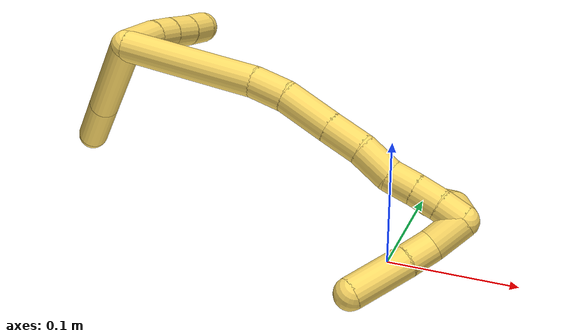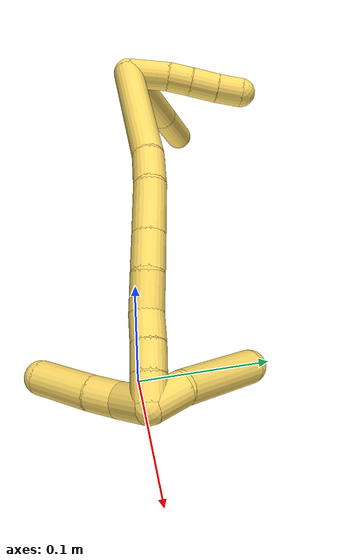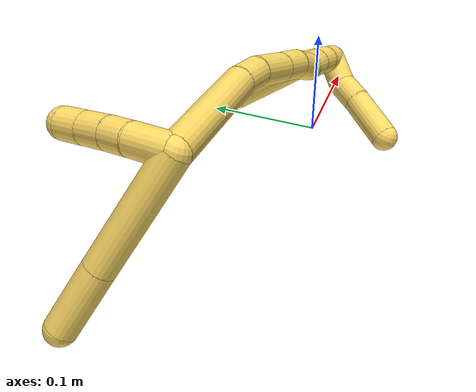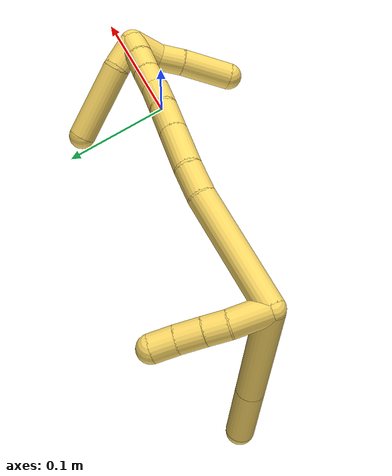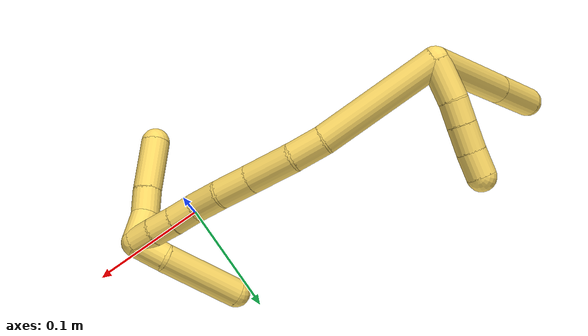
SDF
<sdf version="1.7">
 <world name="default">
  <model name="5">
   <static>0</static>
   <link name="5">
    <collision name="collision-cylinder-e_1_2_8">
     <pose>0.009756 0.000633 -0.04698 -3.12812 0.204737 -3.01062</pose>
     <geometry><cylinder><radius>0.0125</radius><length>0.095973</length></cylinder></geometry>
     <surface>
      <friction><ode><mu>1.16</mu><mu2>1.16</mu2><slip1>0</slip1><slip2>0</slip2></ode></friction>
      <contact><ode><kp>1e+06</kp><kd>1</kd><max_vel>0</max_vel><min_depth>0.001</min_depth></ode></contact>
     </surface>
    </collision>
    <visual name="visual-cylinder-e_1_2_8">
     <pose>0.009756 0.000633 -0.04698 -3.12812 0.204737 -3.01062</pose>
     <geometry><cylinder><radius>0.0125</radius><length>0.095973</length></cylinder></geometry>
     <material><ambient>1 0.858824 0.4 1</ambient></material>
    </visual>
    <collision name="collision-cylinder-e_2_8_6">
     <pose>0.024874 0.001599 -0.120434 -3.12903 0.19981 -3.01645</pose>
     <geometry><cylinder><radius>0.0125</radius><length>0.054027</length></cylinder></geometry>
     <surface>
      <friction><ode><mu>1.16</mu><mu2>1.16</mu2><slip1>0</slip1><slip2>0</slip2></ode></friction>
      <contact><ode><kp>1e+06</kp><kd>1</kd><max_vel>0</max_vel><min_depth>0.001</min_depth></ode></contact>
     </surface>
    </collision>
    <visual name="visual-cylinder-e_2_8_6">
     <pose>0.024874 0.001599 -0.120434 -3.12903 0.19981 -3.01645</pose>
     <geometry><cylinder><radius>0.0125</radius><length>0.054027</length></cylinder></geometry>
     <material><ambient>1 0.858824 0.4 1</ambient></material>
    </visual>
    <collision name="collision-cylinder-e_1_2_9">
     <pose>0.012656 -0.010887 -0.004418 1.95634 0.822558 1.14954</pose>
     <geometry><cylinder><radius>0.0125</radius><length>0.034538</length></cylinder></geometry>
     <surface>
      <friction><ode><mu>1.16</mu><mu2>1.16</mu2><slip1>0</slip1><slip2>0</slip2></ode></friction>
      <contact><ode><kp>1e+06</kp><kd>1</kd><max_vel>0</max_vel><min_depth>0.001</min_depth></ode></contact>
     </surface>
    </collision>
    <visual name="visual-cylinder-e_1_2_9">
     <pose>0.012656 -0.010887 -0.004418 1.95634 0.822558 1.14954</pose>
     <geometry><cylinder><radius>0.0125</radius><length>0.034538</length></cylinder></geometry>
     <material><ambient>1 0.858824 0.4 1</ambient></material>
    </visual>
    <collision name="collision-cylinder-e_2_9_10">
     <pose>0.031813 -0.028956 -0.011889 1.97264 0.694497 1.00114</pose>
     <geometry><cylinder><radius>0.0125</radius><length>0.020314</length></cylinder></geometry>
     <surface>
      <friction><ode><mu>1.16</mu><mu2>1.16</mu2><slip1>0</slip1><slip2>0</slip2></ode></friction>
      <contact><ode><kp>1e+06</kp><kd>1</kd><max_vel>0</max_vel><min_depth>0.001</min_depth></ode></contact>
     </surface>
    </collision>
    <visual name="visual-cylinder-e_2_9_10">
     <pose>0.031813 -0.028956 -0.011889 1.97264 0.694497 1.00114</pose>
     <geometry><cylinder><radius>0.0125</radius><length>0.020314</length></cylinder></geometry>
     <material><ambient>1 0.858824 0.4 1</ambient></material>
    </visual>
    <collision name="collision-cylinder-e_3_10_11">
     <pose>0.045635 -0.044332 -0.018876 2.01847 0.678115 1.02187</pose>
     <geometry><cylinder><radius>0.0125</radius><length>0.023342</length></cylinder></geometry>
     <surface>
      <friction><ode><mu>1.16</mu><mu2>1.16</mu2><slip1>0</slip1><slip2>0</slip2></ode></friction>
      <contact><ode><kp>1e+06</kp><kd>1</kd><max_vel>0</max_vel><min_depth>0.001</min_depth></ode></contact>
     </surface>
    </collision>
    <visual name="visual-cylinder-e_3_10_11">
     <pose>0.045635 -0.044332 -0.018876 2.01847 0.678115 1.02187</pose>
     <geometry><cylinder><radius>0.0125</radius><length>0.023342</length></cylinder></geometry>
     <material><ambient>1 0.858824 0.4 1</ambient></material>
    </visual>
    <collision name="collision-cylinder-e_4_11_5">
     <pose>0.060314 -0.059761 -0.026329 2.02342 0.74068 1.11076</pose>
     <geometry><cylinder><radius>0.0125</radius><length>0.021806</length></cylinder></geometry>
     <surface>
      <friction><ode><mu>1.16</mu><mu2>1.16</mu2><slip1>0</slip1><slip2>0</slip2></ode></friction>
      <contact><ode><kp>1e+06</kp><kd>1</kd><max_vel>0</max_vel><min_depth>0.001</min_depth></ode></contact>
     </surface>
    </collision>
    <visual name="visual-cylinder-e_4_11_5">
     <pose>0.060314 -0.059761 -0.026329 2.02342 0.74068 1.11076</pose>
     <geometry><cylinder><radius>0.0125</radius><length>0.021806</length></cylinder></geometry>
     <material><ambient>1 0.858824 0.4 1</ambient></material>
    </visual>
    <collision name="collision-cylinder-e_1_2_12">
     <pose>-0.021836 -0.047473 0.01571 1.25122 -0.411721 -0.299449</pose>
     <geometry><cylinder><radius>0.0125</radius><length>0.109129</length></cylinder></geometry>
     <surface>
      <friction><ode><mu>1.16</mu><mu2>1.16</mu2><slip1>0</slip1><slip2>0</slip2></ode></friction>
      <contact><ode><kp>1e+06</kp><kd>1</kd><max_vel>0</max_vel><min_depth>0.001</min_depth></ode></contact>
     </surface>
    </collision>
    <visual name="visual-cylinder-e_1_2_12">
     <pose>-0.021836 -0.047473 0.01571 1.25122 -0.411721 -0.299449</pose>
     <geometry><cylinder><radius>0.0125</radius><length>0.109129</length></cylinder></geometry>
     <material><ambient>1 0.858824 0.4 1</ambient></material>
    </visual>
    <collision name="collision-cylinder-e_2_12_13">
     <pose>-0.051201 -0.106688 0.034578 1.30798 -0.554416 -0.429476</pose>
     <geometry><cylinder><radius>0.0125</radius><length>0.028604</length></cylinder></geometry>
     <surface>
      <friction><ode><mu>1.16</mu><mu2>1.16</mu2><slip1>0</slip1><slip2>0</slip2></ode></friction>
      <contact><ode><kp>1e+06</kp><kd>1</kd><max_vel>0</max_vel><min_depth>0.001</min_depth></ode></contact>
     </surface>
    </collision>
    <visual name="visual-cylinder-e_2_12_13">
     <pose>-0.051201 -0.106688 0.034578 1.30798 -0.554416 -0.429476</pose>
     <geometry><cylinder><radius>0.0125</radius><length>0.028604</length></cylinder></geometry>
     <material><ambient>1 0.858824 0.4 1</ambient></material>
    </visual>
    <collision name="collision-cylinder-e_3_13_14">
     <pose>-0.071522 -0.13464 0.039076 1.48842 -0.66643 -0.617083</pose>
     <geometry><cylinder><radius>0.0125</radius><length>0.041385</length></cylinder></geometry>
     <surface>
      <friction><ode><mu>1.16</mu><mu2>1.16</mu2><slip1>0</slip1><slip2>0</slip2></ode></friction>
      <contact><ode><kp>1e+06</kp><kd>1</kd><max_vel>0</max_vel><min_depth>0.001</min_depth></ode></contact>
     </surface>
    </collision>
    <visual name="visual-cylinder-e_3_13_14">
     <pose>-0.071522 -0.13464 0.039076 1.48842 -0.66643 -0.617083</pose>
     <geometry><cylinder><radius>0.0125</radius><length>0.041385</length></cylinder></geometry>
     <material><ambient>1 0.858824 0.4 1</ambient></material>
    </visual>
    <collision name="collision-cylinder-e_4_14_15">
     <pose>-0.093439 -0.162446 0.041698 1.46056 -0.663738 -0.598612</pose>
     <geometry><cylinder><radius>0.0125</radius><length>0.029622</length></cylinder></geometry>
     <surface>
      <friction><ode><mu>1.16</mu><mu2>1.16</mu2><slip1>0</slip1><slip2>0</slip2></ode></friction>
      <contact><ode><kp>1e+06</kp><kd>1</kd><max_vel>0</max_vel><min_depth>0.001</min_depth></ode></contact>
     </surface>
    </collision>
    <visual name="visual-cylinder-e_4_14_15">
     <pose>-0.093439 -0.162446 0.041698 1.46056 -0.663738 -0.598612</pose>
     <geometry><cylinder><radius>0.0125</radius><length>0.029622</length></cylinder></geometry>
     <material><ambient>1 0.858824 0.4 1</ambient></material>
    </visual>
    <collision name="collision-cylinder-e_5_15_16">
     <pose>-0.111706 -0.184757 0.041634 1.69585 -0.702476 -0.787387</pose>
     <geometry><cylinder><radius>0.0125</radius><length>0.028299</length></cylinder></geometry>
     <surface>
      <friction><ode><mu>1.16</mu><mu2>1.16</mu2><slip1>0</slip1><slip2>0</slip2></ode></friction>
      <contact><ode><kp>1e+06</kp><kd>1</kd><max_vel>0</max_vel><min_depth>0.001</min_depth></ode></contact>
     </surface>
    </collision>
    <visual name="visual-cylinder-e_5_15_16">
     <pose>-0.111706 -0.184757 0.041634 1.69585 -0.702476 -0.787387</pose>
     <geometry><cylinder><radius>0.0125</radius><length>0.028299</length></cylinder></geometry>
     <material><ambient>1 0.858824 0.4 1</ambient></material>
    </visual>
    <collision name="collision-cylinder-e_6_16_17">
     <pose>-0.126667 -0.204502 0.041639 1.42215 -0.567419 -0.492146</pose>
     <geometry><cylinder><radius>0.0125</radius><length>0.021653</length></cylinder></geometry>
     <surface>
      <friction><ode><mu>1.16</mu><mu2>1.16</mu2><slip1>0</slip1><slip2>0</slip2></ode></friction>
      <contact><ode><kp>1e+06</kp><kd>1</kd><max_vel>0</max_vel><min_depth>0.001</min_depth></ode></contact>
     </surface>
    </collision>
    <visual name="visual-cylinder-e_6_16_17">
     <pose>-0.126667 -0.204502 0.041639 1.42215 -0.567419 -0.492146</pose>
     <geometry><cylinder><radius>0.0125</radius><length>0.021653</length></cylinder></geometry>
     <material><ambient>1 0.858824 0.4 1</ambient></material>
    </visual>
    <collision name="collision-cylinder-e_7_17_18">
     <pose>-0.138676 -0.222037 0.044149 1.43556 -0.624754 -0.549693</pose>
     <geometry><cylinder><radius>0.0125</radius><length>0.021168</length></cylinder></geometry>
     <surface>
      <friction><ode><mu>1.16</mu><mu2>1.16</mu2><slip1>0</slip1><slip2>0</slip2></ode></friction>
      <contact><ode><kp>1e+06</kp><kd>1</kd><max_vel>0</max_vel><min_depth>0.001</min_depth></ode></contact>
     </surface>
    </collision>
    <visual name="visual-cylinder-e_7_17_18">
     <pose>-0.138676 -0.222037 0.044149 1.43556 -0.624754 -0.549693</pose>
     <geometry><cylinder><radius>0.0125</radius><length>0.021168</length></cylinder></geometry>
     <material><ambient>1 0.858824 0.4 1</ambient></material>
    </visual>
    <collision name="collision-cylinder-e_8_18_1">
     <pose>-0.150756 -0.238707 0.045573 1.53817 -0.624675 -0.605842</pose>
     <geometry><cylinder><radius>0.0125</radius><length>0.020139</length></cylinder></geometry>
     <surface>
      <friction><ode><mu>1.16</mu><mu2>1.16</mu2><slip1>0</slip1><slip2>0</slip2></ode></friction>
      <contact><ode><kp>1e+06</kp><kd>1</kd><max_vel>0</max_vel><min_depth>0.001</min_depth></ode></contact>
     </surface>
    </collision>
    <visual name="visual-cylinder-e_8_18_1">
     <pose>-0.150756 -0.238707 0.045573 1.53817 -0.624675 -0.605842</pose>
     <geometry><cylinder><radius>0.0125</radius><length>0.020139</length></cylinder></geometry>
     <material><ambient>1 0.858824 0.4 1</ambient></material>
    </visual>
    <collision name="collision-cylinder-e_1_1_19">
     <pose>-0.144907 -0.247663 0.038698 3.03111 1.02152 2.94487</pose>
     <geometry><cylinder><radius>0.0125</radius><length>0.027524</length></cylinder></geometry>
     <surface>
      <friction><ode><mu>1.16</mu><mu2>1.16</mu2><slip1>0</slip1><slip2>0</slip2></ode></friction>
      <contact><ode><kp>1e+06</kp><kd>1</kd><max_vel>0</max_vel><min_depth>0.001</min_depth></ode></contact>
     </surface>
    </collision>
    <visual name="visual-cylinder-e_1_1_19">
     <pose>-0.144907 -0.247663 0.038698 3.03111 1.02152 2.94487</pose>
     <geometry><cylinder><radius>0.0125</radius><length>0.027524</length></cylinder></geometry>
     <material><ambient>1 0.858824 0.4 1</ambient></material>
    </visual>
    <collision name="collision-cylinder-e_2_19_4">
     <pose>-0.1094 -0.252032 0.004439 3.01046 0.71541 2.79382</pose>
     <geometry><cylinder><radius>0.0125</radius><length>0.072476</length></cylinder></geometry>
     <surface>
      <friction><ode><mu>1.16</mu><mu2>1.16</mu2><slip1>0</slip1><slip2>0</slip2></ode></friction>
      <contact><ode><kp>1e+06</kp><kd>1</kd><max_vel>0</max_vel><min_depth>0.001</min_depth></ode></contact>
     </surface>
    </collision>
    <visual name="visual-cylinder-e_2_19_4">
     <pose>-0.1094 -0.252032 0.004439 3.01046 0.71541 2.79382</pose>
     <geometry><cylinder><radius>0.0125</radius><length>0.072476</length></cylinder></geometry>
     <material><ambient>1 0.858824 0.4 1</ambient></material>
    </visual>
    <collision name="collision-cylinder-e_1_1_20">
     <pose>-0.16355 -0.237152 0.037522 -2.27864 -0.494982 1.00384</pose>
     <geometry><cylinder><radius>0.0125</radius><length>0.029074</length></cylinder></geometry>
     <surface>
      <friction><ode><mu>1.16</mu><mu2>1.16</mu2><slip1>0</slip1><slip2>0</slip2></ode></friction>
      <contact><ode><kp>1e+06</kp><kd>1</kd><max_vel>0</max_vel><min_depth>0.001</min_depth></ode></contact>
     </surface>
    </collision>
    <visual name="visual-cylinder-e_1_1_20">
     <pose>-0.16355 -0.237152 0.037522 -2.27864 -0.494982 1.00384</pose>
     <geometry><cylinder><radius>0.0125</radius><length>0.029074</length></cylinder></geometry>
     <material><ambient>1 0.858824 0.4 1</ambient></material>
    </visual>
    <collision name="collision-cylinder-e_2_20_21">
     <pose>-0.177053 -0.218204 0.026067 -1.89852 -0.595068 0.80903</pose>
     <geometry><cylinder><radius>0.0125</radius><length>0.023541</length></cylinder></geometry>
     <surface>
      <friction><ode><mu>1.16</mu><mu2>1.16</mu2><slip1>0</slip1><slip2>0</slip2></ode></friction>
      <contact><ode><kp>1e+06</kp><kd>1</kd><max_vel>0</max_vel><min_depth>0.001</min_depth></ode></contact>
     </surface>
    </collision>
    <visual name="visual-cylinder-e_2_20_21">
     <pose>-0.177053 -0.218204 0.026067 -1.89852 -0.595068 0.80903</pose>
     <geometry><cylinder><radius>0.0125</radius><length>0.023541</length></cylinder></geometry>
     <material><ambient>1 0.858824 0.4 1</ambient></material>
    </visual>
    <collision name="collision-cylinder-e_3_21_3">
     <pose>-0.195678 -0.190058 0.015261 -1.95592 -0.532401 0.769196</pose>
     <geometry><cylinder><radius>0.0125</radius><length>0.047385</length></cylinder></geometry>
     <surface>
      <friction><ode><mu>1.16</mu><mu2>1.16</mu2><slip1>0</slip1><slip2>0</slip2></ode></friction>
      <contact><ode><kp>1e+06</kp><kd>1</kd><max_vel>0</max_vel><min_depth>0.001</min_depth></ode></contact>
     </surface>
    </collision>
    <visual name="visual-cylinder-e_3_21_3">
     <pose>-0.195678 -0.190058 0.015261 -1.95592 -0.532401 0.769196</pose>
     <geometry><cylinder><radius>0.0125</radius><length>0.047385</length></cylinder></geometry>
     <material><ambient>1 0.858824 0.4 1</ambient></material>
    </visual>
    <collision name="collision-sphere-3">
     <pose>-0.207704 -0.17114 0.007592 0 -0 0</pose>
     <geometry><sphere><radius>0.0125</radius></sphere></geometry>
     <surface>
      <friction><ode><mu>1.16</mu><mu2>1.16</mu2><slip1>0</slip1><slip2>0</slip2></ode></friction>
      <contact><ode><kp>1e+06</kp><kd>1</kd><max_vel>0</max_vel><min_depth>0.001</min_depth></ode></contact>
     </surface>
    </collision>
    <visual name="visual-sphere-3">
     <pose>-0.207704 -0.17114 0.007592 0 -0 0</pose>
     <geometry><sphere><radius>0.0125</radius></sphere></geometry>
     <material><ambient>1 0.858824 0.4 1</ambient></material>
    </visual>
    <collision name="collision-sphere-21">
     <pose>-0.183651 -0.208976 0.022929 0 -0 0</pose>
     <geometry><sphere><radius>0.0125</radius></sphere></geometry>
     <surface>
      <friction><ode><mu>1.16</mu><mu2>1.16</mu2><slip1>0</slip1><slip2>0</slip2></ode></friction>
      <contact><ode><kp>1e+06</kp><kd>1</kd><max_vel>0</max_vel><min_depth>0.001</min_depth></ode></contact>
     </surface>
    </collision>
    <visual name="visual-sphere-21">
     <pose>-0.183651 -0.208976 0.022929 0 -0 0</pose>
     <geometry><sphere><radius>0.0125</radius></sphere></geometry>
     <material><ambient>1 0.858824 0.4 1</ambient></material>
    </visual>
    <collision name="collision-sphere-20">
     <pose>-0.170455 -0.227433 0.029204 0 -0 0</pose>
     <geometry><sphere><radius>0.0125</radius></sphere></geometry>
     <surface>
      <friction><ode><mu>1.16</mu><mu2>1.16</mu2><slip1>0</slip1><slip2>0</slip2></ode></friction>
      <contact><ode><kp>1e+06</kp><kd>1</kd><max_vel>0</max_vel><min_depth>0.001</min_depth></ode></contact>
     </surface>
    </collision>
    <visual name="visual-sphere-20">
     <pose>-0.170455 -0.227433 0.029204 0 -0 0</pose>
     <geometry><sphere><radius>0.0125</radius></sphere></geometry>
     <material><ambient>1 0.858824 0.4 1</ambient></material>
    </visual>
    <collision name="collision-sphere-4">
     <pose>-0.08563 -0.255608 -0.02268 0 -0 0</pose>
     <geometry><sphere><radius>0.0125</radius></sphere></geometry>
     <surface>
      <friction><ode><mu>1.16</mu><mu2>1.16</mu2><slip1>0</slip1><slip2>0</slip2></ode></friction>
      <contact><ode><kp>1e+06</kp><kd>1</kd><max_vel>0</max_vel><min_depth>0.001</min_depth></ode></contact>
     </surface>
    </collision>
    <visual name="visual-sphere-4">
     <pose>-0.08563 -0.255608 -0.02268 0 -0 0</pose>
     <geometry><sphere><radius>0.0125</radius></sphere></geometry>
     <material><ambient>1 0.858824 0.4 1</ambient></material>
    </visual>
    <collision name="collision-sphere-11">
     <pose>0.052957 -0.052525 -0.02281 0 -0 0</pose>
     <geometry><sphere><radius>0.0125</radius></sphere></geometry>
     <surface>
      <friction><ode><mu>1.16</mu><mu2>1.16</mu2><slip1>0</slip1><slip2>0</slip2></ode></friction>
      <contact><ode><kp>1e+06</kp><kd>1</kd><max_vel>0</max_vel><min_depth>0.001</min_depth></ode></contact>
     </surface>
    </collision>
    <visual name="visual-sphere-11">
     <pose>0.052957 -0.052525 -0.02281 0 -0 0</pose>
     <geometry><sphere><radius>0.0125</radius></sphere></geometry>
     <material><ambient>1 0.858824 0.4 1</ambient></material>
    </visual>
    <collision name="collision-sphere-10">
     <pose>0.038314 -0.036138 -0.014941 0 -0 0</pose>
     <geometry><sphere><radius>0.0125</radius></sphere></geometry>
     <surface>
      <friction><ode><mu>1.16</mu><mu2>1.16</mu2><slip1>0</slip1><slip2>0</slip2></ode></friction>
      <contact><ode><kp>1e+06</kp><kd>1</kd><max_vel>0</max_vel><min_depth>0.001</min_depth></ode></contact>
     </surface>
    </collision>
    <visual name="visual-sphere-10">
     <pose>0.038314 -0.036138 -0.014941 0 -0 0</pose>
     <geometry><sphere><radius>0.0125</radius></sphere></geometry>
     <material><ambient>1 0.858824 0.4 1</ambient></material>
    </visual>
    <collision name="collision-sphere-6">
     <pose>0.030236 0.001931 -0.146908 0 -0 0</pose>
     <geometry><sphere><radius>0.0125</radius></sphere></geometry>
     <surface>
      <friction><ode><mu>1.16</mu><mu2>1.16</mu2><slip1>0</slip1><slip2>0</slip2></ode></friction>
      <contact><ode><kp>1e+06</kp><kd>1</kd><max_vel>0</max_vel><min_depth>0.001</min_depth></ode></contact>
     </surface>
    </collision>
    <visual name="visual-sphere-6">
     <pose>0.030236 0.001931 -0.146908 0 -0 0</pose>
     <geometry><sphere><radius>0.0125</radius></sphere></geometry>
     <material><ambient>1 0.858824 0.4 1</ambient></material>
    </visual>
    <collision name="collision-sphere-9">
     <pose>0.025313 -0.021773 -0.008837 0 -0 0</pose>
     <geometry><sphere><radius>0.0125</radius></sphere></geometry>
     <surface>
      <friction><ode><mu>1.16</mu><mu2>1.16</mu2><slip1>0</slip1><slip2>0</slip2></ode></friction>
      <contact><ode><kp>1e+06</kp><kd>1</kd><max_vel>0</max_vel><min_depth>0.001</min_depth></ode></contact>
     </surface>
    </collision>
    <visual name="visual-sphere-9">
     <pose>0.025313 -0.021773 -0.008837 0 -0 0</pose>
     <geometry><sphere><radius>0.0125</radius></sphere></geometry>
     <material><ambient>1 0.858824 0.4 1</ambient></material>
    </visual>
    <collision name="collision-sphere-2">
     <geometry><sphere><radius>0.0125</radius></sphere></geometry>
     <surface>
      <friction><ode><mu>1.16</mu><mu2>1.16</mu2><slip1>0</slip1><slip2>0</slip2></ode></friction>
      <contact><ode><kp>1e+06</kp><kd>1</kd><max_vel>0</max_vel><min_depth>0.001</min_depth></ode></contact>
     </surface>
    </collision>
    <visual name="visual-sphere-2">
     <geometry><sphere><radius>0.0125</radius></sphere></geometry>
     <material><ambient>1 0.858824 0.4 1</ambient></material>
    </visual>
    <collision name="collision-sphere-19">
     <pose>-0.133169 -0.248455 0.031557 0 -0 0</pose>
     <geometry><sphere><radius>0.0125</radius></sphere></geometry>
     <surface>
      <friction><ode><mu>1.16</mu><mu2>1.16</mu2><slip1>0</slip1><slip2>0</slip2></ode></friction>
      <contact><ode><kp>1e+06</kp><kd>1</kd><max_vel>0</max_vel><min_depth>0.001</min_depth></ode></contact>
     </surface>
    </collision>
    <visual name="visual-sphere-19">
     <pose>-0.133169 -0.248455 0.031557 0 -0 0</pose>
     <geometry><sphere><radius>0.0125</radius></sphere></geometry>
     <material><ambient>1 0.858824 0.4 1</ambient></material>
    </visual>
    <collision name="collision-sphere-8">
     <pose>0.019512 0.001266 -0.09396 0 -0 0</pose>
     <geometry><sphere><radius>0.0125</radius></sphere></geometry>
     <surface>
      <friction><ode><mu>1.16</mu><mu2>1.16</mu2><slip1>0</slip1><slip2>0</slip2></ode></friction>
      <contact><ode><kp>1e+06</kp><kd>1</kd><max_vel>0</max_vel><min_depth>0.001</min_depth></ode></contact>
     </surface>
    </collision>
    <visual name="visual-sphere-8">
     <pose>0.019512 0.001266 -0.09396 0 -0 0</pose>
     <geometry><sphere><radius>0.0125</radius></sphere></geometry>
     <material><ambient>1 0.858824 0.4 1</ambient></material>
    </visual>
    <collision name="collision-sphere-5">
     <pose>0.067671 -0.066997 -0.029848 0 -0 0</pose>
     <geometry><sphere><radius>0.0125</radius></sphere></geometry>
     <surface>
      <friction><ode><mu>1.16</mu><mu2>1.16</mu2><slip1>0</slip1><slip2>0</slip2></ode></friction>
      <contact><ode><kp>1e+06</kp><kd>1</kd><max_vel>0</max_vel><min_depth>0.001</min_depth></ode></contact>
     </surface>
    </collision>
    <visual name="visual-sphere-5">
     <pose>0.067671 -0.066997 -0.029848 0 -0 0</pose>
     <geometry><sphere><radius>0.0125</radius></sphere></geometry>
     <material><ambient>1 0.858824 0.4 1</ambient></material>
    </visual>
    <collision name="collision-sphere-12">
     <pose>-0.043672 -0.094946 0.031419 0 -0 0</pose>
     <geometry><sphere><radius>0.0125</radius></sphere></geometry>
     <surface>
      <friction><ode><mu>1.16</mu><mu2>1.16</mu2><slip1>0</slip1><slip2>0</slip2></ode></friction>
      <contact><ode><kp>1e+06</kp><kd>1</kd><max_vel>0</max_vel><min_depth>0.001</min_depth></ode></contact>
     </surface>
    </collision>
    <visual name="visual-sphere-12">
     <pose>-0.043672 -0.094946 0.031419 0 -0 0</pose>
     <geometry><sphere><radius>0.0125</radius></sphere></geometry>
     <material><ambient>1 0.858824 0.4 1</ambient></material>
    </visual>
    <collision name="collision-sphere-13">
     <pose>-0.058731 -0.118431 0.037737 0 -0 0</pose>
     <geometry><sphere><radius>0.0125</radius></sphere></geometry>
     <surface>
      <friction><ode><mu>1.16</mu><mu2>1.16</mu2><slip1>0</slip1><slip2>0</slip2></ode></friction>
      <contact><ode><kp>1e+06</kp><kd>1</kd><max_vel>0</max_vel><min_depth>0.001</min_depth></ode></contact>
     </surface>
    </collision>
    <visual name="visual-sphere-13">
     <pose>-0.058731 -0.118431 0.037737 0 -0 0</pose>
     <geometry><sphere><radius>0.0125</radius></sphere></geometry>
     <material><ambient>1 0.858824 0.4 1</ambient></material>
    </visual>
    <collision name="collision-sphere-14">
     <pose>-0.084314 -0.15085 0.040414 0 -0 0</pose>
     <geometry><sphere><radius>0.0125</radius></sphere></geometry>
     <surface>
      <friction><ode><mu>1.16</mu><mu2>1.16</mu2><slip1>0</slip1><slip2>0</slip2></ode></friction>
      <contact><ode><kp>1e+06</kp><kd>1</kd><max_vel>0</max_vel><min_depth>0.001</min_depth></ode></contact>
     </surface>
    </collision>
    <visual name="visual-sphere-14">
     <pose>-0.084314 -0.15085 0.040414 0 -0 0</pose>
     <geometry><sphere><radius>0.0125</radius></sphere></geometry>
     <material><ambient>1 0.858824 0.4 1</ambient></material>
    </visual>
    <collision name="collision-sphere-15">
     <pose>-0.102563 -0.174042 0.042981 0 -0 0</pose>
     <geometry><sphere><radius>0.0125</radius></sphere></geometry>
     <surface>
      <friction><ode><mu>1.16</mu><mu2>1.16</mu2><slip1>0</slip1><slip2>0</slip2></ode></friction>
      <contact><ode><kp>1e+06</kp><kd>1</kd><max_vel>0</max_vel><min_depth>0.001</min_depth></ode></contact>
     </surface>
    </collision>
    <visual name="visual-sphere-15">
     <pose>-0.102563 -0.174042 0.042981 0 -0 0</pose>
     <geometry><sphere><radius>0.0125</radius></sphere></geometry>
     <material><ambient>1 0.858824 0.4 1</ambient></material>
    </visual>
    <collision name="collision-sphere-16">
     <pose>-0.120848 -0.195473 0.040287 0 -0 0</pose>
     <geometry><sphere><radius>0.0125</radius></sphere></geometry>
     <surface>
      <friction><ode><mu>1.16</mu><mu2>1.16</mu2><slip1>0</slip1><slip2>0</slip2></ode></friction>
      <contact><ode><kp>1e+06</kp><kd>1</kd><max_vel>0</max_vel><min_depth>0.001</min_depth></ode></contact>
     </surface>
    </collision>
    <visual name="visual-sphere-16">
     <pose>-0.120848 -0.195473 0.040287 0 -0 0</pose>
     <geometry><sphere><radius>0.0125</radius></sphere></geometry>
     <material><ambient>1 0.858824 0.4 1</ambient></material>
    </visual>
    <collision name="collision-sphere-17">
     <pose>-0.132486 -0.213531 0.042991 0 -0 0</pose>
     <geometry><sphere><radius>0.0125</radius></sphere></geometry>
     <surface>
      <friction><ode><mu>1.16</mu><mu2>1.16</mu2><slip1>0</slip1><slip2>0</slip2></ode></friction>
      <contact><ode><kp>1e+06</kp><kd>1</kd><max_vel>0</max_vel><min_depth>0.001</min_depth></ode></contact>
     </surface>
    </collision>
    <visual name="visual-sphere-17">
     <pose>-0.132486 -0.213531 0.042991 0 -0 0</pose>
     <geometry><sphere><radius>0.0125</radius></sphere></geometry>
     <material><ambient>1 0.858824 0.4 1</ambient></material>
    </visual>
    <collision name="collision-sphere-18">
     <pose>-0.144867 -0.230544 0.045306 0 -0 0</pose>
     <geometry><sphere><radius>0.0125</radius></sphere></geometry>
     <surface>
      <friction><ode><mu>1.16</mu><mu2>1.16</mu2><slip1>0</slip1><slip2>0</slip2></ode></friction>
      <contact><ode><kp>1e+06</kp><kd>1</kd><max_vel>0</max_vel><min_depth>0.001</min_depth></ode></contact>
     </surface>
    </collision>
    <visual name="visual-sphere-18">
     <pose>-0.144867 -0.230544 0.045306 0 -0 0</pose>
     <geometry><sphere><radius>0.0125</radius></sphere></geometry>
     <material><ambient>1 0.858824 0.4 1</ambient></material>
    </visual>
    <collision name="collision-sphere-1">
     <pose>-0.156645 -0.246871 0.045839 0 -0 0</pose>
     <geometry><sphere><radius>0.0125</radius></sphere></geometry>
     <surface>
      <friction><ode><mu>1.16</mu><mu2>1.16</mu2><slip1>0</slip1><slip2>0</slip2></ode></friction>
      <contact><ode><kp>1e+06</kp><kd>1</kd><max_vel>0</max_vel><min_depth>0.001</min_depth></ode></contact>
     </surface>
    </collision>
    <visual name="visual-sphere-1">
     <pose>-0.156645 -0.246871 0.045839 0 -0 0</pose>
     <geometry><sphere><radius>0.0125</radius></sphere></geometry>
     <material><ambient>1 0.858824 0.4 1</ambient></material>
    </visual>
    <inertial>
     <pose>-0.061093 -0.116075 0.001171 0 -0 0</pose>
     <mass>0.75</mass>
     <inertia><ixx>-2e-05</ixx><ixy>0</ixy><ixz>0</ixz><iyy>0.000142</iyy><iyz>0</iyz><izz>0.000109</izz></inertia>
    </inertial>
   </link>
   <pose>-0.226812 0.031396 0.130985 0.280306 -0.402761 1.95093</pose>
  </model>
 </world>
</sdf>
